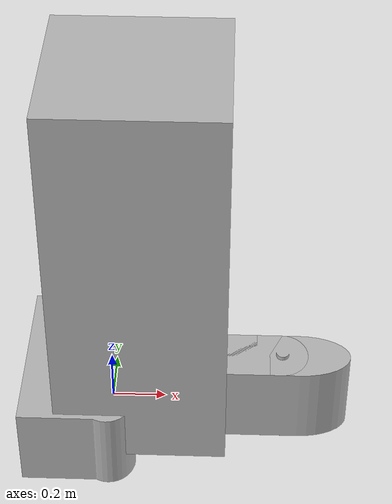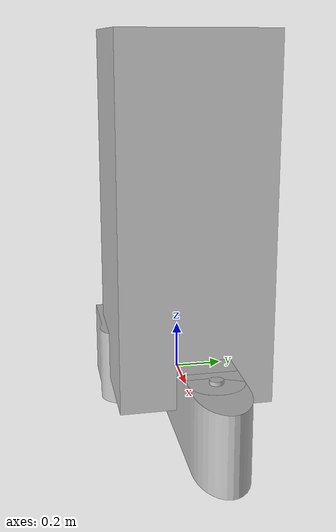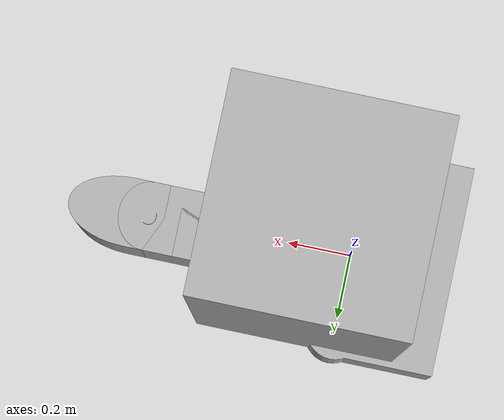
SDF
<?xml version="1.0" ?>
<sdf version='1.6'>
<world name='default'>

<model name='2v2_l.5v.5_r.5v.5_lpinvpin2vround2_rpinvpin2vround2'>
<pose>0 0 .04 0 1.57 0</pose>

<link name='world'>
</link>

<link name='body_palm_lpinvrpin'>
<pose>0 0 0 1.57 0 0</pose>
<collision name='body_palm_lpinvrpin_collision'>
<geometry>
<mesh>
<scale>1 1 1</scale>
<uri>objFiles/body_palm_lpinvrpin_collision.obj</uri>
</mesh>
</geometry>
</collision>
<visual name='body_palm_lpinvrpin_visual'>
<geometry>
<mesh>
<scale>1 1 1</scale>
<uri>objFiles/body_palm_lpinvrpin.obj</uri>
</mesh>
</geometry>
</visual>
<gravity>1</gravity>
<self_collide>1</self_collide>
</link>

<joint name='body_palm_lpinvrpin' type='fixed'>
<child>body_palm_lpinvrpin</child>
<parent>world</parent>
<axis>
<xyz>0 0 0</xyz>
<dynamics>
<damping>100</damping>
<friction>100</friction>
<spring_reference>0</spring_reference>
<spring_stiffness>0</spring_stiffness>
</dynamics>
</axis>
</joint>

<link name='body_l_prox_pinvpin2'>
<pose>0 -0.023379999999999998 0 1.57 0 0</pose>
<collision name='body_l_prox_pinvpin2_collision'>
<geometry>
<mesh>
<scale>1 1 1</scale>
<uri>objFiles/body_l_prox_pinvpin2_collision.obj</uri>
</mesh>
</geometry>
</collision>
<visual name='body_l_prox_pinvpin2_visual'>
<geometry>
<mesh>
<scale>1 1 1</scale>
<uri>objFiles/body_l_prox_pinvpin2.obj</uri>
</mesh>
</geometry>
</visual>
<gravity>1</gravity>
<self_collide>1</self_collide>
</link>

<joint name='body_l_prox_pinvpin2' type='continuous'>
<child>body_l_prox_pinvpin2</child>
<parent>body_palm_lpinvrpin</parent>
<axis>
<xyz>1 0 0</xyz>
<dynamics>
<damping>100</damping>
<friction>100</friction>
<spring_reference>0</spring_reference>
<spring_stiffness>0</spring_stiffness>
</dynamics>
</axis>
</joint>

<link name='body_l_dist_pin2vround2'>
<pose>0 -0.023379999999999998 0.06379 1.57 0 0</pose>
<collision name='body_l_dist_pin2vround2_collision'>
<geometry>
<mesh>
<scale>1 1 1</scale>
<uri>objFiles/body_l_dist_pin2vround2_collision.obj</uri>
</mesh>
</geometry>
</collision>
<visual name='body_l_dist_pin2vround2_visual'>
<geometry>
<mesh>
<scale>1 1 1</scale>
<uri>objFiles/body_l_dist_pin2vround2.obj</uri>
</mesh>
</geometry>
</visual>
<gravity>1</gravity>
<self_collide>1</self_collide>
</link>

<joint name='body_l_dist_pin2vround2' type='continuous'>
<child>body_l_dist_pin2vround2</child>
<parent>body_l_prox_pinvpin2</parent>
<axis>
<xyz>1 0 0</xyz>
<dynamics>
<damping>100</damping>
<friction>100</friction>
<spring_reference>0</spring_reference>
<spring_stiffness>0</spring_stiffness>
</dynamics>
</axis>
</joint>

<link name='body_r_prox_pinvpin2'>
<pose>0 0.023379999999999998 0 1.57 0 0</pose>
<collision name='body_r_prox_pinvpin2_collision'>
<geometry>
<mesh>
<scale>1 1 1</scale>
<uri>objFiles/body_r_prox_pinvpin2_collision.obj</uri>
</mesh>
</geometry>
</collision>
<visual name='body_r_prox_pinvpin2_visual'>
<geometry>
<mesh>
<scale>1 1 1</scale>
<uri>objFiles/body_r_prox_pinvpin2.obj</uri>
</mesh>
</geometry>
</visual>
<gravity>1</gravity>
<self_collide>1</self_collide>
</link>

<joint name='body_r_prox_pinvpin2' type='continuous'>
<child>body_r_prox_pinvpin2</child>
<parent>body_palm_lpinvrpin</parent>
<axis>
<xyz>1 0 0</xyz>
<dynamics>
<damping>100</damping>
<friction>100</friction>
<spring_reference>0</spring_reference>
<spring_stiffness>0</spring_stiffness>
</dynamics>
</axis>
</joint>

<link name='body_r_dist_pin2vround2'>
<pose>0 0.023379999999999998 0.06379 1.57 0 0</pose>
<collision name='body_r_dist_pin2vround2_collision'>
<geometry>
<mesh>
<scale>1 1 1</scale>
<uri>objFiles/body_r_dist_pin2vround2_collision.obj</uri>
</mesh>
</geometry>
</collision>
<visual name='body_r_dist_pin2vround2_visual'>
<geometry>
<mesh>
<scale>1 1 1</scale>
<uri>objFiles/body_r_dist_pin2vround2.obj</uri>
</mesh>
</geometry>
</visual>
<gravity>1</gravity>
<self_collide>1</self_collide>
</link>

<joint name='body_r_dist_pin2vround2' type='continuous'>
<child>body_r_dist_pin2vround2</child>
<parent>body_r_prox_pinvpin2</parent>
<axis>
<xyz>1 0 0</xyz>
<dynamics>
<damping>100</damping>
<friction>100</friction>
<spring_reference>0</spring_reference>
<spring_stiffness>0</spring_stiffness>
</dynamics>
</axis>
</joint>

</model>

<model name='Measuring_Block'>
<pose>0.12 0 0 1.57 0 0</pose>

<link name='Measuring_Block'>
<pose>0 0 0 0 0 0</pose>
<collision name='Measuring_Block_collision'>
<geometry>
<mesh>
<scale>1 1 1</scale>
<uri>objFiles/Measuring_Block_collision.obj</uri>
</mesh>
</geometry>
</collision>
<visual name='Measuring_Block_visual'>
<geometry>
<mesh>
<scale>1 1 1</scale>
<uri>objFiles/Measuring_Block.obj</uri>
</mesh>
</geometry>
</visual>
<gravity>1</gravity>
<self_collide>1</self_collide>
</link>

</model>

</world>
</sdf>
